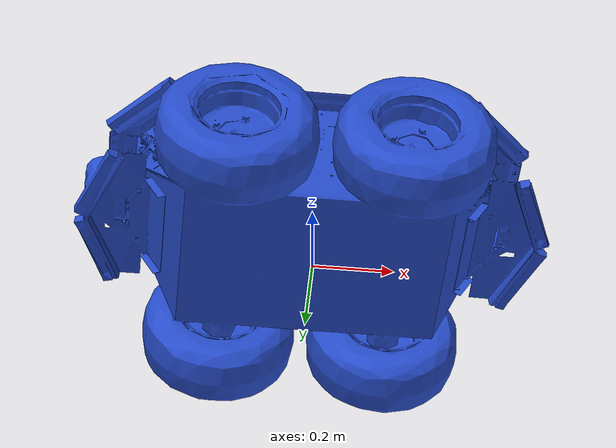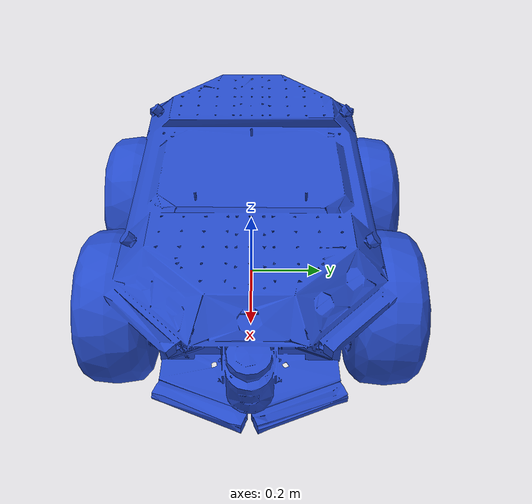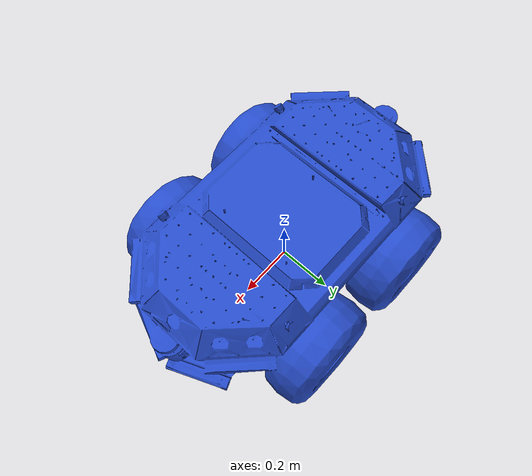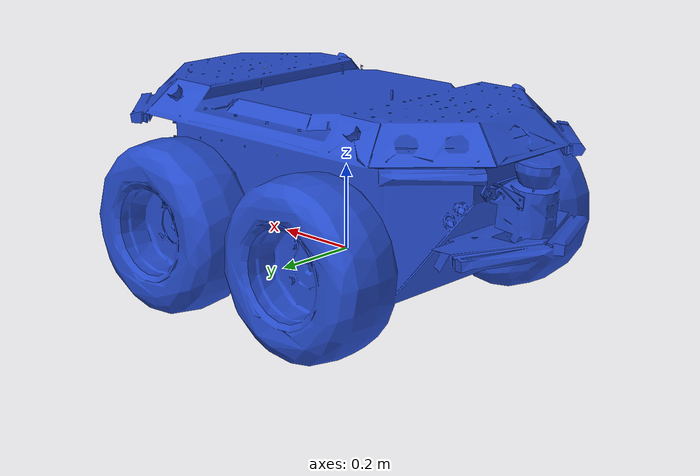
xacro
<?xml version="1.0"?>
<robot xmlns:xacro="http://www.ros.org/wiki/xacro">

  <property name="pi" value="3.1415926535897931" />
  <property name="wheel_z_offset" value="0.1" />

  <link name="base_link" >
    <visual>
      <origin xyz="0 0 0" rpy="${pi/2} 0 ${-pi/2}" />
      <geometry>
        <mesh filename="package://seekur_jr_description/meshes/SeekurJr.stl" scale="0.001 0.001 0.001"/>
      </geometry>
      <material name="Blue"/>
    </visual>
    <collision>
      <origin xyz="0 0 0" rpy="${pi/2} 0 ${-pi/2}" />
      <geometry>
        <mesh filename="package://seekur_jr_description/meshes/SeekurJr.stl" scale="0.001 0.001 0.001"/>
      </geometry>
    </collision>
    <inertial>
      <mass value="100" />
      <origin xyz="0 0 0" rpy="0 0 0"/>
      <!-- KDL Does not support root link with inertia -->
      <inertia ixx="1" ixy="0" ixz="0"
	           iyy="1" iyz="0"
               izz="1" />
    </inertial>
  </link>

    <!--  here was the camera link and joint -->

  <joint name="seekur_base_to_top_joint" type="fixed">
      <origin xyz="0 0 0.406" rpy="0 0 0" /> <!-- 386 + 20 plaque -->
      <parent link="base_link"/>
      <child link="seekur_top_link"/>
  </joint>

  <link name="seekur_top_link" >
  </link>

</robot>
